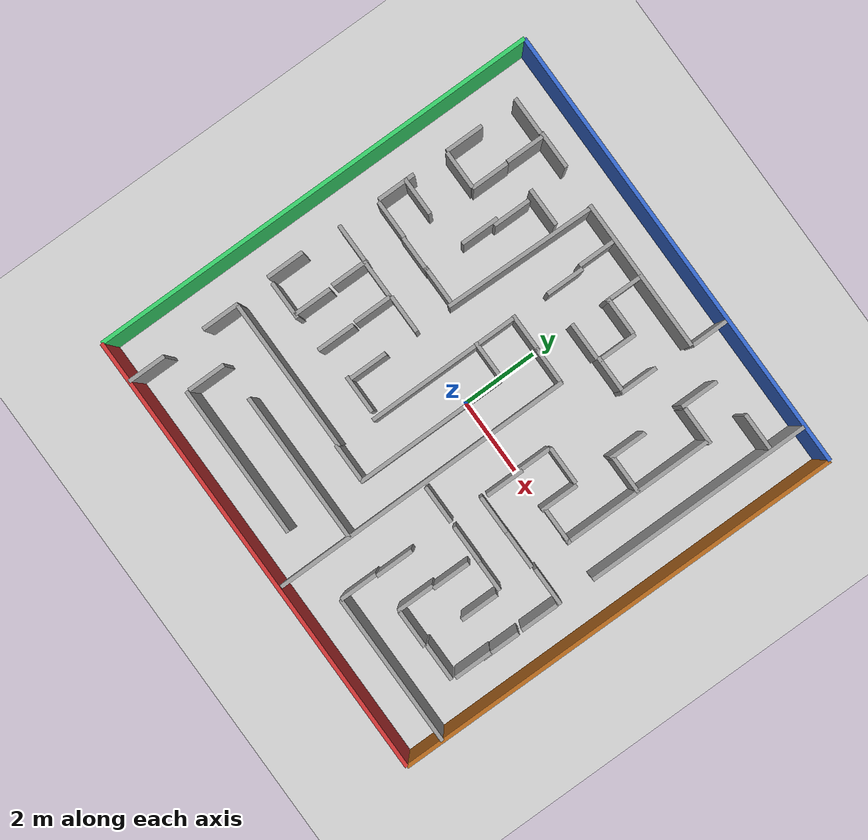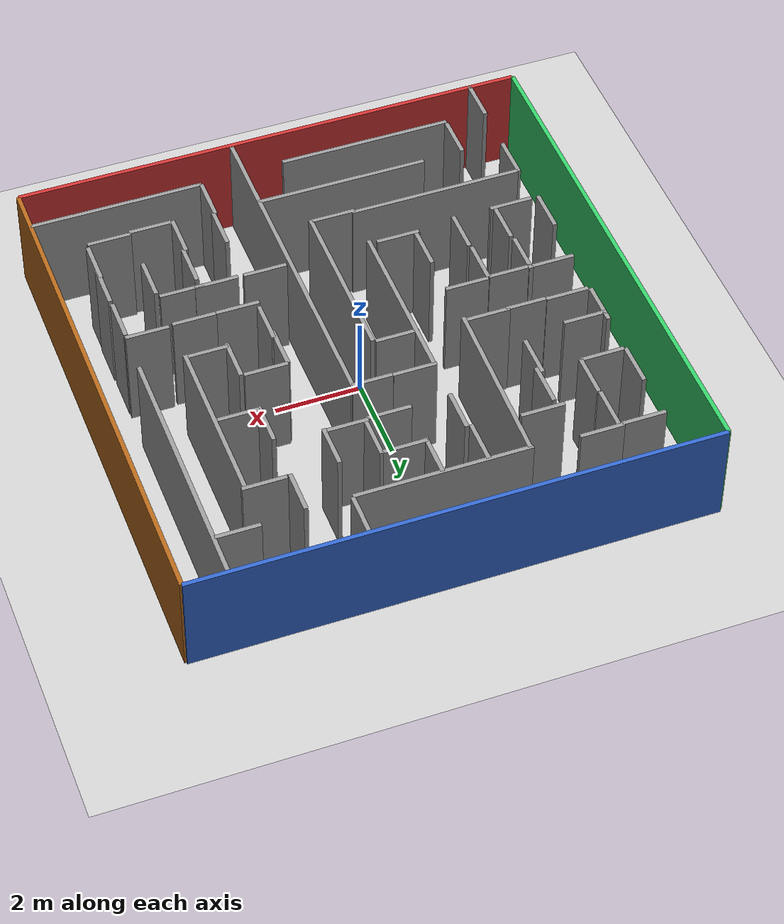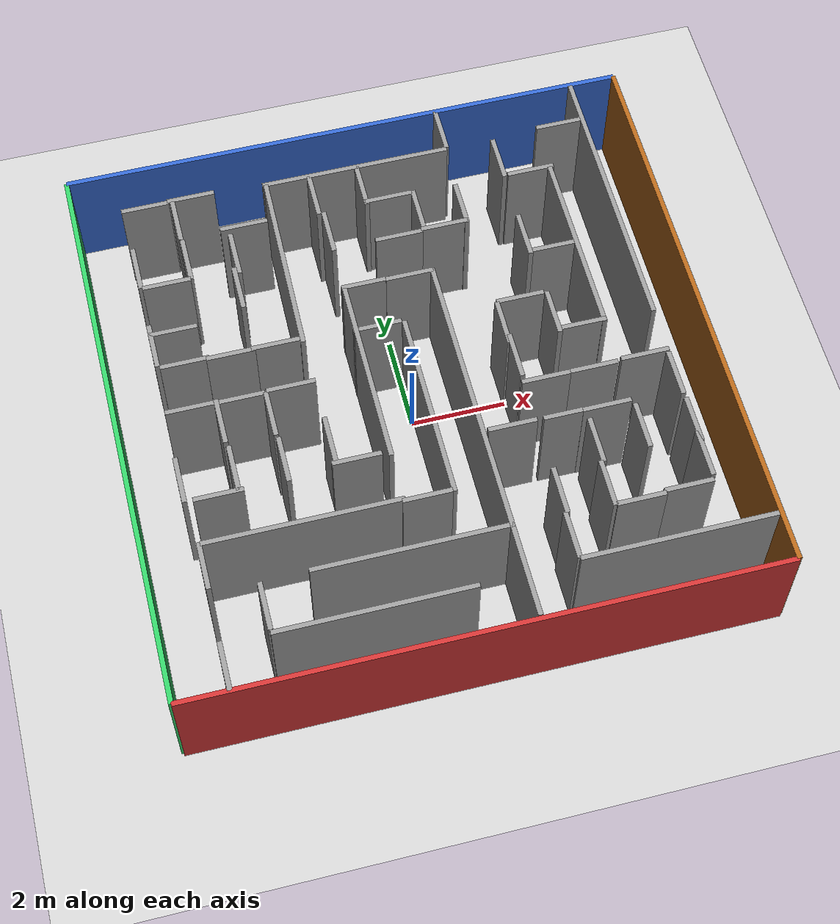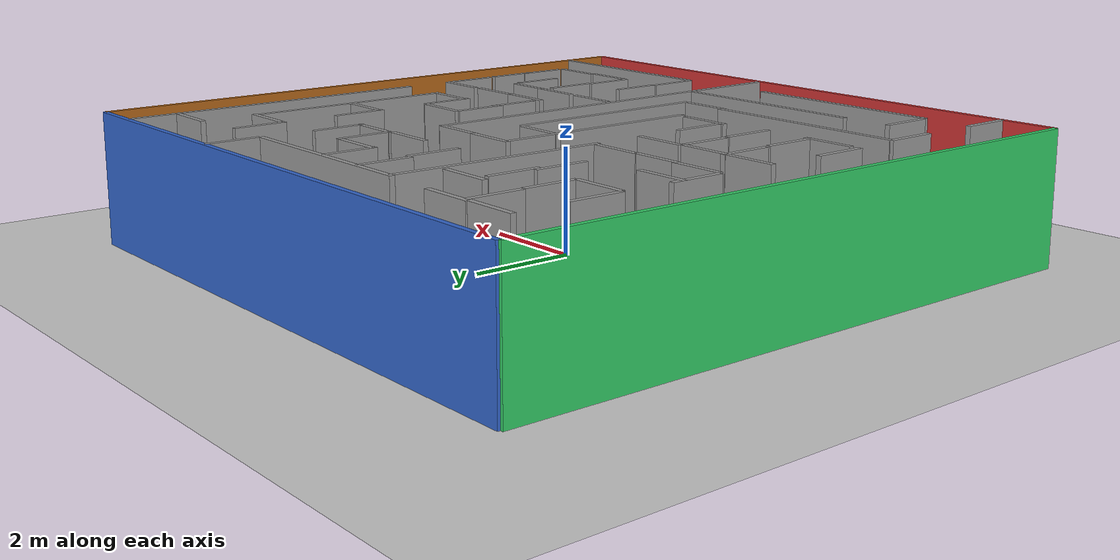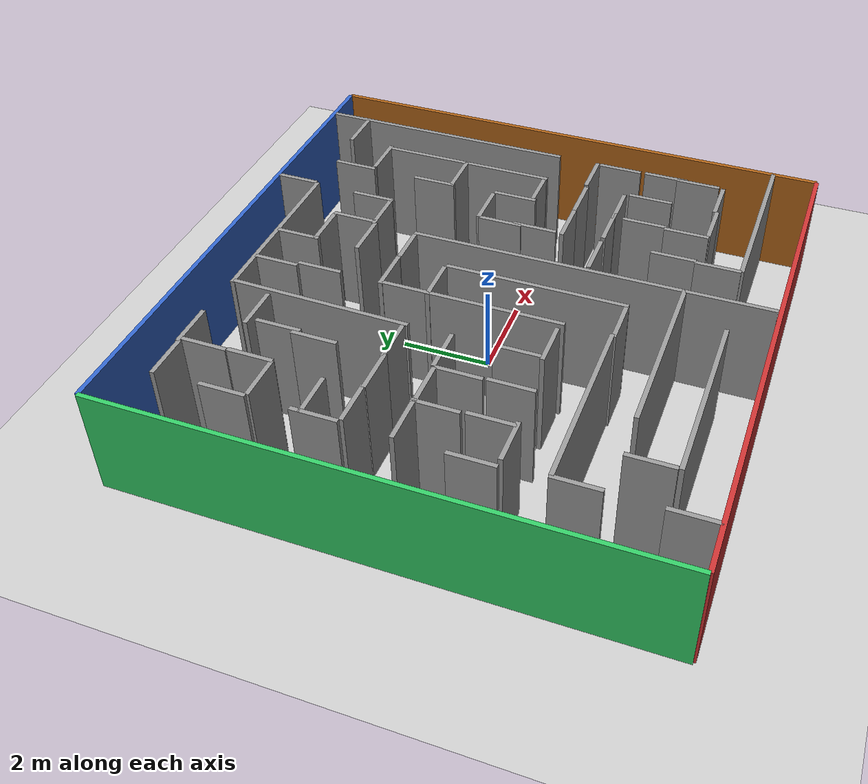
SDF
<sdf version="1.7">
 <world name="expanded_maze_world">
  <light name="sun" type="directional">
   <pose>0 0 10 0 -0 0</pose>
   <diffuse>0.8 0.8 0.8 1</diffuse>
   <specular>0.2 0.2 0.2 1</specular>
   <attenuation>
    <range>1000</range>
    <constant>0.9</constant>
    <linear>0.01</linear>
    <quadratic>0.001</quadratic>
   </attenuation>
   <direction>-0.5 0.1 -0.9</direction>
   <spot><inner_angle>0</inner_angle><outer_angle>0</outer_angle><falloff>0</falloff></spot>
  </light>
  <model name="ground_plane">
   <static>1</static>
   <link name="link">
    <collision name="collision">
     <geometry><plane><normal>0 0 1</normal><size>100 100</size></plane></geometry>
     <surface>
      <contact><collide_bitmask>65535</collide_bitmask></contact>
      <friction><ode><mu>100</mu><mu2>50</mu2></ode></friction>
     </surface>
    </collision>
    <visual name="visual">
     <cast_shadows>0</cast_shadows>
     <geometry><plane><normal>0 0 1</normal><size>100 100</size></plane></geometry>
     <material>
      <script><uri>file://media/materials/scripts/gazebo.material</uri><name>Gazebo/Grey</name></script>
     </material>
    </visual>
   </link>
  </model>
  <model name="ground_plane">
   <static>1</static>
   <link name="link">
    <collision name="collision">
     <geometry><plane><normal>0 0 1</normal><size>100 100</size></plane></geometry>
     <surface>
      <contact><collide_bitmask>65535</collide_bitmask></contact>
      <friction><ode><mu>100</mu><mu2>50</mu2></ode></friction>
     </surface>
    </collision>
    <visual name="visual">
     <cast_shadows>0</cast_shadows>
     <geometry><plane><normal>0 0 1</normal><size>100 100</size></plane></geometry>
     <material>
      <script><uri>file://media/materials/scripts/gazebo.material</uri><name>Gazebo/Grey</name></script>
     </material>
    </visual>
   </link>
  </model>
  <light name="point_light_1" type="point">
   <pose>0 0 10 0 -0 0</pose>
   <diffuse>1 1 1 1</diffuse>
   <specular>0.1 0.1 0.1 1</specular>
   <attenuation>
    <range>20</range>
    <constant>0.5</constant>
    <linear>0.01</linear>
    <quadratic>0.001</quadratic>
   </attenuation>
   <direction>0 0 -1</direction>
   <spot><inner_angle>0</inner_angle><outer_angle>0</outer_angle><falloff>0</falloff></spot>
  </light>
  <model name="back_wall">
   <static>1</static>
   <pose>0 6 0 0 -0 0</pose>
   <link name="link">
    <collision name="collision">
     <geometry><box><size>12 0.1 2.5</size></box></geometry>
     <pose>0 0 1.25 0 -0 0</pose>
    </collision>
    <visual name="visual">
     <geometry><box><size>12 0.1 2.5</size></box></geometry>
     <pose>0 0 1.25 0 -0 0</pose>
     <material><ambient>0.2 0.4 0.8 1</ambient><diffuse>0.2 0.4 0.8 1</diffuse></material>
    </visual>
   </link>
  </model>
  <model name="front_wall">
   <static>1</static>
   <pose>0 -6 0 0 -0 0</pose>
   <link name="link">
    <collision name="collision">
     <geometry><box><size>12 0.1 2.5</size></box></geometry>
     <pose>0 0 1.25 0 -0 0</pose>
    </collision>
    <visual name="visual">
     <geometry><box><size>12 0.1 2.5</size></box></geometry>
     <pose>0 0 1.25 0 -0 0</pose>
     <material><ambient>0.8 0.2 0.2 1</ambient><diffuse>0.8 0.2 0.2 1</diffuse></material>
    </visual>
   </link>
  </model>
  <model name="left_wall">
   <static>1</static>
   <pose>-6 0 0 0 -0 1.5708</pose>
   <link name="link">
    <collision name="collision">
     <geometry><box><size>12 0.1 2.5</size></box></geometry>
     <pose>0 0 1.25 0 -0 0</pose>
    </collision>
    <visual name="visual">
     <geometry><box><size>12 0.1 2.5</size></box></geometry>
     <pose>0 0 1.25 0 -0 0</pose>
     <material><ambient>0.2 0.8 0.4 1</ambient><diffuse>0.2 0.8 0.4 1</diffuse></material>
    </visual>
   </link>
  </model>
  <model name="right_wall">
   <static>1</static>
   <pose>6 0 0 0 -0 1.5708</pose>
   <link name="link">
    <collision name="collision">
     <geometry><box><size>12 0.1 2.5</size></box></geometry>
     <pose>0 0 1.25 0 -0 0</pose>
    </collision>
    <visual name="visual">
     <geometry><box><size>12 0.1 2.5</size></box></geometry>
     <pose>0 0 1.25 0 -0 0</pose>
     <material><ambient>0.7 0.4 0.1 1</ambient><diffuse>0.7 0.4 0.1 1</diffuse></material>
    </visual>
   </link>
  </model>
  <model name="inner_wall_3">
   <static>1</static>
   <pose>5.01855 2.97332 0 0 -0 1.5708</pose>
   <link name="link">
    <collision name="collision">
     <geometry><box><size>6 0.1 2.5</size></box></geometry>
     <pose>0 0 1.25 0 -0 0</pose>
    </collision>
    <visual name="visual">
     <geometry><box><size>6 0.1 2.5</size></box></geometry>
     <pose>0 0 1.25 0 -0 0</pose>
     <material><ambient>0.6 0.6 0.6 1</ambient><diffuse>0.6 0.6 0.6 1</diffuse></material>
    </visual>
   </link>
  </model>
  <model name="small_wall_1">
   <static>1</static>
   <pose>2 -4.48484 0 0 -0 1.5708</pose>
   <link name="link">
    <collision name="collision">
     <geometry><box><size>1 0.1 2.5</size></box></geometry>
     <pose>0 0 1.25 0 -0 0</pose>
    </collision>
    <visual name="visual">
     <geometry><box><size>1 0.1 2.5</size></box></geometry>
     <pose>0 0 1.25 0 -0 0</pose>
     <material><ambient>0.6 0.6 0.6 1</ambient><diffuse>0.6 0.6 0.6 1</diffuse></material>
    </visual>
   </link>
  </model>
  <model name="small_wall_5">
   <static>1</static>
   <pose>-3.50018 0 0 0 -0 0</pose>
   <link name="link">
    <collision name="collision">
     <geometry><box><size>1 0.1 2.5</size></box></geometry>
     <pose>0 0 1.25 0 -0 0</pose>
    </collision>
    <visual name="visual">
     <geometry><box><size>1 0.1 2.5</size></box></geometry>
     <pose>0 0 1.25 0 -0 0</pose>
     <material><ambient>0.6 0.6 0.6 1</ambient><diffuse>0.6 0.6 0.6 1</diffuse></material>
    </visual>
   </link>
  </model>
  <model name="small_wall_3">
   <static>1</static>
   <pose>-4.50887 0.017883 0 0 -0 0</pose>
   <link name="link">
    <collision name="collision">
     <geometry><box><size>1 0.1 2.5</size></box></geometry>
     <pose>0 0 1.25 0 -0 0</pose>
    </collision>
    <visual name="visual">
     <geometry><box><size>1 0.1 2.5</size></box></geometry>
     <pose>0 0 1.25 0 -0 0</pose>
     <material><ambient>0.6 0.6 0.6 1</ambient><diffuse>0.6 0.6 0.6 1</diffuse></material>
    </visual>
   </link>
  </model>
  <model name="small_wall_4">
   <static>1</static>
   <pose>-2.98906 -0.500004 0 0 -0 1.5708</pose>
   <link name="link">
    <collision name="collision">
     <geometry><box><size>1 0.1 2.5</size></box></geometry>
     <pose>0 0 1.25 0 -0 0</pose>
    </collision>
    <visual name="visual">
     <geometry><box><size>1 0.1 2.5</size></box></geometry>
     <pose>0 0 1.25 0 -0 0</pose>
     <material><ambient>0.6 0.6 0.6 1</ambient><diffuse>0.6 0.6 0.6 1</diffuse></material>
    </visual>
   </link>
  </model>
  <model name="small_wall_2">
   <static>1</static>
   <pose>2 5.5 0 0 -0 1.5708</pose>
   <link name="link">
    <collision name="collision">
     <geometry><box><size>1 0.1 2.5</size></box></geometry>
     <pose>0 0 1.25 0 -0 0</pose>
    </collision>
    <visual name="visual">
     <geometry><box><size>1 0.1 2.5</size></box></geometry>
     <pose>0 0 1.25 0 -0 0</pose>
     <material><ambient>0.6 0.6 0.6 1</ambient><diffuse>0.6 0.6 0.6 1</diffuse></material>
    </visual>
   </link>
  </model>
  <model name="inner_wall_5">
   <static>1</static>
   <pose>4 -4.99152 0 0 -0 0</pose>
   <link name="link">
    <collision name="collision">
     <geometry><box><size>4 0.1 2.5</size></box></geometry>
     <pose>0 0 1.25 0 -0 0</pose>
    </collision>
    <visual name="visual">
     <geometry><box><size>4 0.1 2.5</size></box></geometry>
     <pose>0 0 1.25 0 -0 0</pose>
     <material><ambient>0.6 0.6 0.6 1</ambient><diffuse>0.6 0.6 0.6 1</diffuse></material>
    </visual>
   </link>
  </model>
  <gravity>0 0 -9.8</gravity>
  <magnetic_field>6e-06 2.3e-05 -4.2e-05</magnetic_field>
  <atmosphere type="adiabatic"/>
  <physics type="ode">
   <max_step_size>0.001</max_step_size>
   <real_time_factor>1</real_time_factor>
   <real_time_update_rate>1000</real_time_update_rate>
  </physics>
  <scene><ambient>0.4 0.4 0.4 1</ambient><background>0.7 0.7 0.7 1</background><shadows>1</shadows></scene>
  <audio><device>default</device></audio>
  <spherical_coordinates>
   <surface_model>EARTH_WGS84</surface_model>
   <latitude_deg>0</latitude_deg>
   <longitude_deg>0</longitude_deg>
   <elevation>0</elevation>
   <heading_deg>0</heading_deg>
  </spherical_coordinates>
  <model name="inner_wall_1_clone">
   <static>1</static>
   <pose>0.942132 -1.93397 0 0 0 -1.56663</pose>
   <link name="link">
    <collision name="collision">
     <geometry><box><size>6 0.1 2.5</size></box></geometry>
     <pose>0 0 1.25 0 -0 0</pose>
    </collision>
    <visual name="visual">
     <geometry><box><size>8 0.1 2.5</size></box></geometry>
     <pose>0 0 1.25 0 -0 0</pose>
     <material><ambient>0.6 0.6 0.6 1</ambient><diffuse>0.6 0.6 0.6 1</diffuse></material>
    </visual>
   </link>
  </model>
  <model name="inner_wall_5_clone">
   <static>1</static>
   <pose>-0.01019 4.9696 0 0 -0 0</pose>
   <link name="link">
    <collision name="collision">
     <geometry><box><size>4 0.1 2.5</size></box></geometry>
     <pose>0 0 1.25 0 -0 0</pose>
    </collision>
    <visual name="visual">
     <geometry><box><size>4 0.1 2.5</size></box></geometry>
     <pose>0 0 1.25 0 -0 0</pose>
     <material><ambient>0.6 0.6 0.6 1</ambient><diffuse>0.6 0.6 0.6 1</diffuse></material>
    </visual>
   </link>
  </model>
  <model name="inner_wall_5_clone_0">
   <static>1</static>
   <pose>-1.97896 2.96409 0 0 0 -1.58997</pose>
   <link name="link">
    <collision name="collision">
     <geometry><box><size>4 0.1 2.5</size></box></geometry>
     <pose>0 0 1.25 0 -0 0</pose>
    </collision>
    <visual name="visual">
     <geometry><box><size>4 0.1 2.5</size></box></geometry>
     <pose>0 0 1.25 0 -0 0</pose>
     <material><ambient>0.6 0.6 0.6 1</ambient><diffuse>0.6 0.6 0.6 1</diffuse></material>
    </visual>
   </link>
  </model>
  <model name="small_wall_4_clone">
   <static>1</static>
   <pose>-4.95348 1.60124 0 0 -0 1.5708</pose>
   <link name="link">
    <collision name="collision">
     <geometry><box><size>1 0.1 2.5</size></box></geometry>
     <pose>0 0 1.25 0 -0 0</pose>
    </collision>
    <visual name="visual">
     <geometry><box><size>1 0.1 2.5</size></box></geometry>
     <pose>0 0 1.25 0 -0 0</pose>
     <material><ambient>0.6 0.6 0.6 1</ambient><diffuse>0.6 0.6 0.6 1</diffuse></material>
    </visual>
   </link>
  </model>
  <model name="small_wall_3_clone">
   <static>1</static>
   <pose>-2.56284 1.06244 0 0 -0 0</pose>
   <link name="link">
    <collision name="collision">
     <geometry><box><size>1 0.1 2.5</size></box></geometry>
     <pose>0 0 1.25 0 -0 0</pose>
    </collision>
    <visual name="visual">
     <geometry><box><size>1 0.1 2.5</size></box></geometry>
     <pose>0 0 1.25 0 -0 0</pose>
     <material><ambient>0.6 0.6 0.6 1</ambient><diffuse>0.6 0.6 0.6 1</diffuse></material>
    </visual>
   </link>
  </model>
  <model name="small_wall_3_clone_0">
   <static>1</static>
   <pose>-3.48148 1.04617 0 0 -0 0</pose>
   <link name="link">
    <collision name="collision">
     <geometry><box><size>1 0.1 2.5</size></box></geometry>
     <pose>0 0 1.25 0 -0 0</pose>
    </collision>
    <visual name="visual">
     <geometry><box><size>1 0.1 2.5</size></box></geometry>
     <pose>0 0 1.25 0 -0 0</pose>
     <material><ambient>0.6 0.6 0.6 1</ambient><diffuse>0.6 0.6 0.6 1</diffuse></material>
    </visual>
   </link>
  </model>
  <model name="small_wall_3_clone_1">
   <static>1</static>
   <pose>-4.41424 1.06919 0 0 -0 0</pose>
   <link name="link">
    <collision name="collision">
     <geometry><box><size>1 0.1 2.5</size></box></geometry>
     <pose>0 0 1.25 0 -0 0</pose>
    </collision>
    <visual name="visual">
     <geometry><box><size>1 0.1 2.5</size></box></geometry>
     <pose>0 0 1.25 0 -0 0</pose>
     <material><ambient>0.6 0.6 0.6 1</ambient><diffuse>0.6 0.6 0.6 1</diffuse></material>
    </visual>
   </link>
  </model>
  <model name="small_wall_3_clone_2">
   <static>1</static>
   <pose>-2.59397 4.07287 0 0 -0 0</pose>
   <link name="link">
    <collision name="collision">
     <geometry><box><size>1 0.1 2.5</size></box></geometry>
     <pose>0 0 1.25 0 -0 0</pose>
    </collision>
    <visual name="visual">
     <geometry><box><size>1 0.1 2.5</size></box></geometry>
     <pose>0 0 1.25 0 -0 0</pose>
     <material><ambient>0.6 0.6 0.6 1</ambient><diffuse>0.6 0.6 0.6 1</diffuse></material>
    </visual>
   </link>
  </model>
  <model name="small_wall_3_clone_3">
   <static>1</static>
   <pose>-4.49933 1.86883 0 0 -0 0</pose>
   <link name="link">
    <collision name="collision">
     <geometry><box><size>1 0.1 2.5</size></box></geometry>
     <pose>0 0 1.25 0 -0 0</pose>
    </collision>
    <visual name="visual">
     <geometry><box><size>1 0.1 2.5</size></box></geometry>
     <pose>0 0 1.25 0 -0 0</pose>
     <material><ambient>0.6 0.6 0.6 1</ambient><diffuse>0.6 0.6 0.6 1</diffuse></material>
    </visual>
   </link>
  </model>
  <model name="small_wall_4_clone_clone">
   <static>1</static>
   <pose>-2.91754 3.41024 0 0 -0 1.5708</pose>
   <link name="link">
    <collision name="collision">
     <geometry><box><size>1 0.1 2.5</size></box></geometry>
     <pose>0 0 1.25 0 -0 0</pose>
    </collision>
    <visual name="visual">
     <geometry><box><size>1 0.1 2.5</size></box></geometry>
     <pose>0 0 1.25 0 -0 0</pose>
     <material><ambient>0.6 0.6 0.6 1</ambient><diffuse>0.6 0.6 0.6 1</diffuse></material>
    </visual>
   </link>
  </model>
  <model name="small_wall_3_clone_4">
   <static>1</static>
   <pose>1.54156 -1.89147 0 0 -0 0</pose>
   <link name="link">
    <collision name="collision">
     <geometry><box><size>1 0.1 2.5</size></box></geometry>
     <pose>0 0 1.25 0 -0 0</pose>
    </collision>
    <visual name="visual">
     <geometry><box><size>1 0.1 2.5</size></box></geometry>
     <pose>0 0 1.25 0 -0 0</pose>
     <material><ambient>0.6 0.6 0.6 1</ambient><diffuse>0.6 0.6 0.6 1</diffuse></material>
    </visual>
   </link>
  </model>
  <model name="small_wall_3_clone_5">
   <static>1</static>
   <pose>2.66648 -1.89874 0 0 -0 0</pose>
   <link name="link">
    <collision name="collision">
     <geometry><box><size>1 0.1 2.5</size></box></geometry>
     <pose>0 0 1.25 0 -0 0</pose>
    </collision>
    <visual name="visual">
     <geometry><box><size>1 0.1 2.5</size></box></geometry>
     <pose>0 0 1.25 0 -0 0</pose>
     <material><ambient>0.6 0.6 0.6 1</ambient><diffuse>0.6 0.6 0.6 1</diffuse></material>
    </visual>
   </link>
  </model>
  <model name="small_wall_3_clone_6">
   <static>1</static>
   <pose>3.46504 -1.90566 0 0 -0 0</pose>
   <link name="link">
    <collision name="collision">
     <geometry><box><size>1 0.1 2.5</size></box></geometry>
     <pose>0 0 1.25 0 -0 0</pose>
    </collision>
    <visual name="visual">
     <geometry><box><size>1 0.1 2.5</size></box></geometry>
     <pose>0 0 1.25 0 -0 0</pose>
     <material><ambient>0.6 0.6 0.6 1</ambient><diffuse>0.6 0.6 0.6 1</diffuse></material>
    </visual>
   </link>
  </model>
  <model name="small_wall_4_clone_clone_0_clone">
   <static>1</static>
   <pose>3.03848 -2.61564 0 0 -0 1.5708</pose>
   <link name="link">
    <collision name="collision">
     <geometry><box><size>1 0.1 2.5</size></box></geometry>
     <pose>0 0 1.25 0 -0 0</pose>
    </collision>
    <visual name="visual">
     <geometry><box><size>1 0.1 2.5</size></box></geometry>
     <pose>0 0 1.25 0 -0 0</pose>
     <material><ambient>0.6 0.6 0.6 1</ambient><diffuse>0.6 0.6 0.6 1</diffuse></material>
    </visual>
   </link>
  </model>
  <model name="small_wall_4_clone_clone_0_clone_0">
   <static>1</static>
   <pose>2.97809 -3.58071 0 0 -0 1.5708</pose>
   <link name="link">
    <collision name="collision">
     <geometry><box><size>1 0.1 2.5</size></box></geometry>
     <pose>0 0 1.25 0 -0 0</pose>
    </collision>
    <visual name="visual">
     <geometry><box><size>1 0.1 2.5</size></box></geometry>
     <pose>0 0 1.25 0 -0 0</pose>
     <material><ambient>0.6 0.6 0.6 1</ambient><diffuse>0.6 0.6 0.6 1</diffuse></material>
    </visual>
   </link>
  </model>
  <model name="small_wall_3_clone_6_clone">
   <static>1</static>
   <pose>3.50501 -4.05604 0 0 -0 0</pose>
   <link name="link">
    <collision name="collision">
     <geometry><box><size>1 0.1 2.5</size></box></geometry>
     <pose>0 0 1.25 0 -0 0</pose>
    </collision>
    <visual name="visual">
     <geometry><box><size>1 0.1 2.5</size></box></geometry>
     <pose>0 0 1.25 0 -0 0</pose>
     <material><ambient>0.6 0.6 0.6 1</ambient><diffuse>0.6 0.6 0.6 1</diffuse></material>
    </visual>
   </link>
  </model>
  <model name="small_wall_3_clone_6_clone_0">
   <static>1</static>
   <pose>4.47817 -4 0 0 -0 0</pose>
   <link name="link">
    <collision name="collision">
     <geometry><box><size>1 0.1 2.5</size></box></geometry>
     <pose>0 0 1.25 0 -0 0</pose>
    </collision>
    <visual name="visual">
     <geometry><box><size>1 0.1 2.5</size></box></geometry>
     <pose>0 0 1.25 0 -0 0</pose>
     <material><ambient>0.6 0.6 0.6 1</ambient><diffuse>0.6 0.6 0.6 1</diffuse></material>
    </visual>
   </link>
  </model>
  <model name="small_wall_4_clone_clone_0_clone_clone">
   <static>1</static>
   <pose>4.0064 -2.51158 0 0 -0 1.5708</pose>
   <link name="link">
    <collision name="collision">
     <geometry><box><size>1 0.1 2.5</size></box></geometry>
     <pose>0 0 1.25 0 -0 0</pose>
    </collision>
    <visual name="visual">
     <geometry><box><size>1 0.1 2.5</size></box></geometry>
     <pose>0 0 1.25 0 -0 0</pose>
     <material><ambient>0.6 0.6 0.6 1</ambient><diffuse>0.6 0.6 0.6 1</diffuse></material>
    </visual>
   </link>
  </model>
  <model name="small_wall_4_clone_clone_0_clone_clone_clone">
   <static>1</static>
   <pose>4.99601 -3.40378 0 0 -0 1.5708</pose>
   <link name="link">
    <collision name="collision">
     <geometry><box><size>1 0.1 2.5</size></box></geometry>
     <pose>0 0 1.25 0 -0 0</pose>
    </collision>
    <visual name="visual">
     <geometry><box><size>1 0.1 2.5</size></box></geometry>
     <pose>0 0 1.25 0 -0 0</pose>
     <material><ambient>0.6 0.6 0.6 1</ambient><diffuse>0.6 0.6 0.6 1</diffuse></material>
    </visual>
   </link>
  </model>
  <model name="small_wall_4_clone_clone_0_clone_clone_clone_0">
   <static>1</static>
   <pose>5.01762 -2.62789 0 0 -0 1.5708</pose>
   <link name="link">
    <collision name="collision">
     <geometry><box><size>1 0.1 2.5</size></box></geometry>
     <pose>0 0 1.25 0 -0 0</pose>
    </collision>
    <visual name="visual">
     <geometry><box><size>1 0.1 2.5</size></box></geometry>
     <pose>0 0 1.25 0 -0 0</pose>
     <material><ambient>0.6 0.6 0.6 1</ambient><diffuse>0.6 0.6 0.6 1</diffuse></material>
    </visual>
   </link>
  </model>
  <model name="small_wall_4_clone_clone_0_clone_clone_clone_1">
   <static>1</static>
   <pose>5.00425 -1.52973 0 0 -0 1.5708</pose>
   <link name="link">
    <collision name="collision">
     <geometry><box><size>1 0.1 2.5</size></box></geometry>
     <pose>0 0 1.25 0 -0 0</pose>
    </collision>
    <visual name="visual">
     <geometry><box><size>1 0.1 2.5</size></box></geometry>
     <pose>0 0 1.25 0 -0 0</pose>
     <material><ambient>0.6 0.6 0.6 1</ambient><diffuse>0.6 0.6 0.6 1</diffuse></material>
    </visual>
   </link>
  </model>
  <model name="small_wall_3_clone_6_clone_1">
   <static>1</static>
   <pose>4.54254 -0.957363 0 0 -0 0</pose>
   <link name="link">
    <collision name="collision">
     <geometry><box><size>1 0.1 2.5</size></box></geometry>
     <pose>0 0 1.25 0 -0 0</pose>
    </collision>
    <visual name="visual">
     <geometry><box><size>1 0.1 2.5</size></box></geometry>
     <pose>0 0 1.25 0 -0 0</pose>
     <material><ambient>0.6 0.6 0.6 1</ambient><diffuse>0.6 0.6 0.6 1</diffuse></material>
    </visual>
   </link>
  </model>
  <model name="small_wall_3_clone_6_clone_2">
   <static>1</static>
   <pose>3.46823 -0.994603 0 0 -0 0</pose>
   <link name="link">
    <collision name="collision">
     <geometry><box><size>1 0.1 2.5</size></box></geometry>
     <pose>0 0 1.25 0 -0 0</pose>
    </collision>
    <visual name="visual">
     <geometry><box><size>1 0.1 2.5</size></box></geometry>
     <pose>0 0 1.25 0 -0 0</pose>
     <material><ambient>0.6 0.6 0.6 1</ambient><diffuse>0.6 0.6 0.6 1</diffuse></material>
    </visual>
   </link>
  </model>
  <model name="small_wall_3_clone_6_clone_3">
   <static>1</static>
   <pose>2.47607 -1 0 0 -0 0</pose>
   <link name="link">
    <collision name="collision">
     <geometry><box><size>1 0.1 2.5</size></box></geometry>
     <pose>0 0 1.25 0 -0 0</pose>
    </collision>
    <visual name="visual">
     <geometry><box><size>1 0.1 2.5</size></box></geometry>
     <pose>0 0 1.25 0 -0 0</pose>
     <material><ambient>0.6 0.6 0.6 1</ambient><diffuse>0.6 0.6 0.6 1</diffuse></material>
    </visual>
   </link>
  </model>
  <model name="small_wall_4_clone_clone_0_clone_clone_clone_1_clone">
   <static>1</static>
   <pose>2.03325 -0.363202 0 0 -0 1.5708</pose>
   <link name="link">
    <collision name="collision">
     <geometry><box><size>1 0.1 2.5</size></box></geometry>
     <pose>0 0 1.25 0 -0 0</pose>
    </collision>
    <visual name="visual">
     <geometry><box><size>1 0.1 2.5</size></box></geometry>
     <pose>0 0 1.25 0 -0 0</pose>
     <material><ambient>0.6 0.6 0.6 1</ambient><diffuse>0.6 0.6 0.6 1</diffuse></material>
    </visual>
   </link>
  </model>
  <model name="small_wall_4_clone_clone_0_clone_clone_clone_1_clone_0">
   <static>1</static>
   <pose>1.9948 0.441125 0 0 -0 1.5708</pose>
   <link name="link">
    <collision name="collision">
     <geometry><box><size>1 0.1 2.5</size></box></geometry>
     <pose>0 0 1.25 0 -0 0</pose>
    </collision>
    <visual name="visual">
     <geometry><box><size>1 0.1 2.5</size></box></geometry>
     <pose>0 0 1.25 0 -0 0</pose>
     <material><ambient>0.6 0.6 0.6 1</ambient><diffuse>0.6 0.6 0.6 1</diffuse></material>
    </visual>
   </link>
  </model>
  <model name="small_wall_3_clone_6_clone_3_clone">
   <static>1</static>
   <pose>2.49055 0.95757 0 0 -0 0</pose>
   <link name="link">
    <collision name="collision">
     <geometry><box><size>1 0.1 2.5</size></box></geometry>
     <pose>0 0 1.25 0 -0 0</pose>
    </collision>
    <visual name="visual">
     <geometry><box><size>1 0.1 2.5</size></box></geometry>
     <pose>0 0 1.25 0 -0 0</pose>
     <material><ambient>0.6 0.6 0.6 1</ambient><diffuse>0.6 0.6 0.6 1</diffuse></material>
    </visual>
   </link>
  </model>
  <model name="small_wall_4_clone_clone_0_clone_clone_clone_1_clone_1">
   <static>1</static>
   <pose>3.04702 0.449523 0 0 -0 1.5708</pose>
   <link name="link">
    <collision name="collision">
     <geometry><box><size>1 0.1 2.5</size></box></geometry>
     <pose>0 0 1.25 0 -0 0</pose>
    </collision>
    <visual name="visual">
     <geometry><box><size>1 0.1 2.5</size></box></geometry>
     <pose>0 0 1.25 0 -0 0</pose>
     <material><ambient>0.6 0.6 0.6 1</ambient><diffuse>0.6 0.6 0.6 1</diffuse></material>
    </visual>
   </link>
  </model>
  <model name="small_wall_3_clone_6_clone_2_clone">
   <static>1</static>
   <pose>3.54022 0.036936 0 0 -0 0</pose>
   <link name="link">
    <collision name="collision">
     <geometry><box><size>1 0.1 2.5</size></box></geometry>
     <pose>0 0 1.25 0 -0 0</pose>
    </collision>
    <visual name="visual">
     <geometry><box><size>1 0.1 2.5</size></box></geometry>
     <pose>0 0 1.25 0 -0 0</pose>
     <material><ambient>0.6 0.6 0.6 1</ambient><diffuse>0.6 0.6 0.6 1</diffuse></material>
    </visual>
   </link>
  </model>
  <model name="inner_wall_5_clone_0_clone">
   <static>1</static>
   <pose>3.98763 1.97381 0 0 0 -1.56906</pose>
   <link name="link">
    <collision name="collision">
     <geometry><box><size>4 0.1 2.5</size></box></geometry>
     <pose>0 0 1.25 0 -0 0</pose>
    </collision>
    <visual name="visual">
     <geometry><box><size>4 0.1 2.5</size></box></geometry>
     <pose>0 0 1.25 0 -0 0</pose>
     <material><ambient>0.6 0.6 0.6 1</ambient><diffuse>0.6 0.6 0.6 1</diffuse></material>
    </visual>
   </link>
  </model>
  <model name="small_wall_3_clone_2_clone">
   <static>1</static>
   <pose>3.56918 4 0 0 -0 0</pose>
   <link name="link">
    <collision name="collision">
     <geometry><box><size>1 0.1 2.5</size></box></geometry>
     <pose>0 0 1.25 0 -0 0</pose>
    </collision>
    <visual name="visual">
     <geometry><box><size>1 0.1 2.5</size></box></geometry>
     <pose>0 0 1.25 0 -0 0</pose>
     <material><ambient>0.6 0.6 0.6 1</ambient><diffuse>0.6 0.6 0.6 1</diffuse></material>
    </visual>
   </link>
  </model>
  <model name="small_wall_4_clone_clone_clone">
   <static>1</static>
   <pose>3.00012 4.45909 0 0 -0 1.5708</pose>
   <link name="link">
    <collision name="collision">
     <geometry><box><size>1 0.1 2.5</size></box></geometry>
     <pose>0 0 1.25 0 -0 0</pose>
    </collision>
    <visual name="visual">
     <geometry><box><size>1 0.1 2.5</size></box></geometry>
     <pose>0 0 1.25 0 -0 0</pose>
     <material><ambient>0.6 0.6 0.6 1</ambient><diffuse>0.6 0.6 0.6 1</diffuse></material>
    </visual>
   </link>
  </model>
  <model name="small_wall_3_clone_2_clone_0">
   <static>1</static>
   <pose>3.501 2.00333 0 0 -0 0</pose>
   <link name="link">
    <collision name="collision">
     <geometry><box><size>1 0.1 2.5</size></box></geometry>
     <pose>0 0 1.25 0 -0 0</pose>
    </collision>
    <visual name="visual">
     <geometry><box><size>1 0.1 2.5</size></box></geometry>
     <pose>0 0 1.25 0 -0 0</pose>
     <material><ambient>0.6 0.6 0.6 1</ambient><diffuse>0.6 0.6 0.6 1</diffuse></material>
    </visual>
   </link>
  </model>
  <model name="small_wall_3_clone_2_clone_1">
   <static>1</static>
   <pose>4.49432 5.04433 0 0 -0 0</pose>
   <link name="link">
    <collision name="collision">
     <geometry><box><size>1 0.1 2.5</size></box></geometry>
     <pose>0 0 1.25 0 -0 0</pose>
    </collision>
    <visual name="visual">
     <geometry><box><size>1 0.1 2.5</size></box></geometry>
     <pose>0 0 1.25 0 -0 0</pose>
     <material><ambient>0.6 0.6 0.6 1</ambient><diffuse>0.6 0.6 0.6 1</diffuse></material>
    </visual>
   </link>
  </model>
  <model name="small_wall_4_clone_clone_clone_0">
   <static>1</static>
   <pose>0.014094 4.46666 0 0 -0 1.5708</pose>
   <link name="link">
    <collision name="collision">
     <geometry><box><size>1 0.1 2.5</size></box></geometry>
     <pose>0 0 1.25 0 -0 0</pose>
    </collision>
    <visual name="visual">
     <geometry><box><size>1 0.1 2.5</size></box></geometry>
     <pose>0 0 1.25 0 -0 0</pose>
     <material><ambient>0.6 0.6 0.6 1</ambient><diffuse>0.6 0.6 0.6 1</diffuse></material>
    </visual>
   </link>
  </model>
  <model name="small_wall_3_clone_2_clone_2">
   <static>1</static>
   <pose>0.488348 4.04121 0 0 -0 0</pose>
   <link name="link">
    <collision name="collision">
     <geometry><box><size>1 0.1 2.5</size></box></geometry>
     <pose>0 0 1.25 0 -0 0</pose>
    </collision>
    <visual name="visual">
     <geometry><box><size>1 0.1 2.5</size></box></geometry>
     <pose>0 0 1.25 0 -0 0</pose>
     <material><ambient>0.6 0.6 0.6 1</ambient><diffuse>0.6 0.6 0.6 1</diffuse></material>
    </visual>
   </link>
  </model>
  <model name="small_wall_3_clone_2_clone_3">
   <static>1</static>
   <pose>0.470058 3.03229 0 0 -0 0</pose>
   <link name="link">
    <collision name="collision">
     <geometry><box><size>1 0.1 2.5</size></box></geometry>
     <pose>0 0 1.25 0 -0 0</pose>
    </collision>
    <visual name="visual">
     <geometry><box><size>1 0.1 2.5</size></box></geometry>
     <pose>0 0 1.25 0 -0 0</pose>
     <material><ambient>0.6 0.6 0.6 1</ambient><diffuse>0.6 0.6 0.6 1</diffuse></material>
    </visual>
   </link>
  </model>
  <model name="small_wall_4_clone_clone_clone_1">
   <static>1</static>
   <pose>1.01951 3.57135 0 0 -0 1.5708</pose>
   <link name="link">
    <collision name="collision">
     <geometry><box><size>1 0.1 2.5</size></box></geometry>
     <pose>0 0 1.25 0 -0 0</pose>
    </collision>
    <visual name="visual">
     <geometry><box><size>1 0.1 2.5</size></box></geometry>
     <pose>0 0 1.25 0 -0 0</pose>
     <material><ambient>0.6 0.6 0.6 1</ambient><diffuse>0.6 0.6 0.6 1</diffuse></material>
    </visual>
   </link>
  </model>
  <model name="small_wall_3_clone_2_clone_4">
   <static>1</static>
   <pose>1.44641 3.07224 0 0 -0 0</pose>
   <link name="link">
    <collision name="collision">
     <geometry><box><size>1 0.1 2.5</size></box></geometry>
     <pose>0 0 1.25 0 -0 0</pose>
    </collision>
    <visual name="visual">
     <geometry><box><size>1 0.1 2.5</size></box></geometry>
     <pose>0 0 1.25 0 -0 0</pose>
     <material><ambient>0.6 0.6 0.6 1</ambient><diffuse>0.6 0.6 0.6 1</diffuse></material>
    </visual>
   </link>
  </model>
  <model name="small_wall_4_clone_clone_clone_2">
   <static>1</static>
   <pose>1.92642 3.50879 0 0 -0 1.5708</pose>
   <link name="link">
    <collision name="collision">
     <geometry><box><size>1 0.1 2.5</size></box></geometry>
     <pose>0 0 1.25 0 -0 0</pose>
    </collision>
    <visual name="visual">
     <geometry><box><size>1 0.1 2.5</size></box></geometry>
     <pose>0 0 1.25 0 -0 0</pose>
     <material><ambient>0.6 0.6 0.6 1</ambient><diffuse>0.6 0.6 0.6 1</diffuse></material>
    </visual>
   </link>
  </model>
  <model name="small_wall_4_clone_clone_clone_3">
   <static>1</static>
   <pose>2.99514 2.43501 0 0 -0 1.5708</pose>
   <link name="link">
    <collision name="collision">
     <geometry><box><size>1 0.1 2.5</size></box></geometry>
     <pose>0 0 1.25 0 -0 0</pose>
    </collision>
    <visual name="visual">
     <geometry><box><size>1 0.1 2.5</size></box></geometry>
     <pose>0 0 1.25 0 -0 0</pose>
     <material><ambient>0.6 0.6 0.6 1</ambient><diffuse>0.6 0.6 0.6 1</diffuse></material>
    </visual>
   </link>
  </model>
  <model name="small_wall_3_clone_0_clone">
   <static>1</static>
   <pose>0.441346 2.03485 0 0 -0 0</pose>
   <link name="link">
    <collision name="collision">
     <geometry><box><size>1 0.1 2.5</size></box></geometry>
     <pose>0 0 1.25 0 -0 0</pose>
    </collision>
    <visual name="visual">
     <geometry><box><size>1 0.1 2.5</size></box></geometry>
     <pose>0 0 1.25 0 -0 0</pose>
     <material><ambient>0.6 0.6 0.6 1</ambient><diffuse>0.6 0.6 0.6 1</diffuse></material>
    </visual>
   </link>
  </model>
  <model name="small_wall_3_clone_0_clone_0">
   <static>1</static>
   <pose>-0.483011 2.04757 0 0 -0 0</pose>
   <link name="link">
    <collision name="collision">
     <geometry><box><size>1 0.1 2.5</size></box></geometry>
     <pose>0 0 1.25 0 -0 0</pose>
    </collision>
    <visual name="visual">
     <geometry><box><size>1 0.1 2.5</size></box></geometry>
     <pose>0 0 1.25 0 -0 0</pose>
     <material><ambient>0.6 0.6 0.6 1</ambient><diffuse>0.6 0.6 0.6 1</diffuse></material>
    </visual>
   </link>
  </model>
  <model name="inner_wall_5_clone_0_clone_0">
   <static>1</static>
   <pose>-0.921494 0.018485 0 0 0 -1.56906</pose>
   <link name="link">
    <collision name="collision">
     <geometry><box><size>4 0.1 2.5</size></box></geometry>
     <pose>0 0 1.25 0 -0 0</pose>
    </collision>
    <visual name="visual">
     <geometry><box><size>4 0.1 2.5</size></box></geometry>
     <pose>0 0 1.25 0 -0 0</pose>
     <material><ambient>0.6 0.6 0.6 1</ambient><diffuse>0.6 0.6 0.6 1</diffuse></material>
    </visual>
   </link>
  </model>
  <model name="small_wall_3_clone_clone">
   <static>1</static>
   <pose>-0.481384 0.986952 0 0 -0 0</pose>
   <link name="link">
    <collision name="collision">
     <geometry><box><size>1 0.1 2.5</size></box></geometry>
     <pose>0 0 1.25 0 -0 0</pose>
    </collision>
    <visual name="visual">
     <geometry><box><size>1 0.1 2.5</size></box></geometry>
     <pose>0 0 1.25 0 -0 0</pose>
     <material><ambient>0.6 0.6 0.6 1</ambient><diffuse>0.6 0.6 0.6 1</diffuse></material>
    </visual>
   </link>
  </model>
  <model name="inner_wall_5_clone_0_clone_1">
   <static>1</static>
   <pose>0.069805 -1.03995 0 0 0 -1.56906</pose>
   <link name="link">
    <collision name="collision">
     <geometry><box><size>4 0.1 2.5</size></box></geometry>
     <pose>0 0 1.25 0 -0 0</pose>
    </collision>
    <visual name="visual">
     <geometry><box><size>4 0.1 2.5</size></box></geometry>
     <pose>0 0 1.25 0 -0 0</pose>
     <material><ambient>0.6 0.6 0.6 1</ambient><diffuse>0.6 0.6 0.6 1</diffuse></material>
    </visual>
   </link>
  </model>
  <model name="small_wall_3_clone_2_clone_5">
   <static>1</static>
   <pose>-0.456515 -2.99937 0 0 -0 0</pose>
   <link name="link">
    <collision name="collision">
     <geometry><box><size>1 0.1 2.5</size></box></geometry>
     <pose>0 0 1.25 0 -0 0</pose>
    </collision>
    <visual name="visual">
     <geometry><box><size>1 0.1 2.5</size></box></geometry>
     <pose>0 0 1.25 0 -0 0</pose>
     <material><ambient>0.6 0.6 0.6 1</ambient><diffuse>0.6 0.6 0.6 1</diffuse></material>
    </visual>
   </link>
  </model>
  <model name="inner_wall_5_clone_1">
   <static>1</static>
   <pose>-2.88283 -2.95759 0 0 -0 0</pose>
   <link name="link">
    <collision name="collision">
     <geometry><box><size>4 0.1 2.5</size></box></geometry>
     <pose>0 0 1.25 0 -0 0</pose>
    </collision>
    <visual name="visual">
     <geometry><box><size>4 0.1 2.5</size></box></geometry>
     <pose>0 0 1.25 0 -0 0</pose>
     <material><ambient>0.6 0.6 0.6 1</ambient><diffuse>0.6 0.6 0.6 1</diffuse></material>
    </visual>
   </link>
  </model>
  <model name="small_wall_4_clone_clone_clone_4">
   <static>1</static>
   <pose>-3.90653 3.5009 0 0 -0 1.5708</pose>
   <link name="link">
    <collision name="collision">
     <geometry><box><size>1 0.1 2.5</size></box></geometry>
     <pose>0 0 1.25 0 -0 0</pose>
    </collision>
    <visual name="visual">
     <geometry><box><size>1 0.1 2.5</size></box></geometry>
     <pose>0 0 1.25 0 -0 0</pose>
     <material><ambient>0.6 0.6 0.6 1</ambient><diffuse>0.6 0.6 0.6 1</diffuse></material>
    </visual>
   </link>
  </model>
  <model name="small_wall_4_clone_clone_clone_5">
   <static>1</static>
   <pose>-3.92801 4.5143 0 0 -0 1.5708</pose>
   <link name="link">
    <collision name="collision">
     <geometry><box><size>1 0.1 2.5</size></box></geometry>
     <pose>0 0 1.25 0 -0 0</pose>
    </collision>
    <visual name="visual">
     <geometry><box><size>1 0.1 2.5</size></box></geometry>
     <pose>0 0 1.25 0 -0 0</pose>
     <material><ambient>0.6 0.6 0.6 1</ambient><diffuse>0.6 0.6 0.6 1</diffuse></material>
    </visual>
   </link>
  </model>
  <model name="small_wall_3_clone_2_clone_6">
   <static>1</static>
   <pose>-4.50501 5.01635 0 0 -0 0</pose>
   <link name="link">
    <collision name="collision">
     <geometry><box><size>1 0.1 2.5</size></box></geometry>
     <pose>0 0 1.25 0 -0 0</pose>
    </collision>
    <visual name="visual">
     <geometry><box><size>1 0.1 2.5</size></box></geometry>
     <pose>0 0 1.25 0 -0 0</pose>
     <material><ambient>0.6 0.6 0.6 1</ambient><diffuse>0.6 0.6 0.6 1</diffuse></material>
    </visual>
   </link>
  </model>
  <model name="small_wall_3_clone_2_clone_7">
   <static>1</static>
   <pose>-4.41732 3.01695 0 0 -0 0</pose>
   <link name="link">
    <collision name="collision">
     <geometry><box><size>1 0.1 2.5</size></box></geometry>
     <pose>0 0 1.25 0 -0 0</pose>
    </collision>
    <visual name="visual">
     <geometry><box><size>1 0.1 2.5</size></box></geometry>
     <pose>0 0 1.25 0 -0 0</pose>
     <material><ambient>0.6 0.6 0.6 1</ambient><diffuse>0.6 0.6 0.6 1</diffuse></material>
    </visual>
   </link>
  </model>
  <model name="small_wall_4_clone_0">
   <static>1</static>
   <pose>-2.96095 -1.55488 0 0 -0 1.5708</pose>
   <link name="link">
    <collision name="collision">
     <geometry><box><size>1 0.1 2.5</size></box></geometry>
     <pose>0 0 1.25 0 -0 0</pose>
    </collision>
    <visual name="visual">
     <geometry><box><size>1 0.1 2.5</size></box></geometry>
     <pose>0 0 1.25 0 -0 0</pose>
     <material><ambient>0.6 0.6 0.6 1</ambient><diffuse>0.6 0.6 0.6 1</diffuse></material>
    </visual>
   </link>
  </model>
  <model name="small_wall_4_clone_1">
   <static>1</static>
   <pose>-3.97779 -0.424487 0 0 -0 1.5708</pose>
   <link name="link">
    <collision name="collision">
     <geometry><box><size>1 0.1 2.5</size></box></geometry>
     <pose>0 0 1.25 0 -0 0</pose>
    </collision>
    <visual name="visual">
     <geometry><box><size>1 0.1 2.5</size></box></geometry>
     <pose>0 0 1.25 0 -0 0</pose>
     <material><ambient>0.6 0.6 0.6 1</ambient><diffuse>0.6 0.6 0.6 1</diffuse></material>
    </visual>
   </link>
  </model>
  <model name="small_wall_4_clone_2">
   <static>1</static>
   <pose>-3.94089 -1.50772 0 0 -0 1.5708</pose>
   <link name="link">
    <collision name="collision">
     <geometry><box><size>1 0.1 2.5</size></box></geometry>
     <pose>0 0 1.25 0 -0 0</pose>
    </collision>
    <visual name="visual">
     <geometry><box><size>1 0.1 2.5</size></box></geometry>
     <pose>0 0 1.25 0 -0 0</pose>
     <material><ambient>0.6 0.6 0.6 1</ambient><diffuse>0.6 0.6 0.6 1</diffuse></material>
    </visual>
   </link>
  </model>
  <model name="small_wall_4_clone_3">
   <static>1</static>
   <pose>-5 -1.51963 0 0 -0 1.5708</pose>
   <link name="link">
    <collision name="collision">
     <geometry><box><size>1 0.1 2.5</size></box></geometry>
     <pose>0 0 1.25 0 -0 0</pose>
    </collision>
    <visual name="visual">
     <geometry><box><size>1 0.1 2.5</size></box></geometry>
     <pose>0 0 1.25 0 -0 0</pose>
     <material><ambient>0.6 0.6 0.6 1</ambient><diffuse>0.6 0.6 0.6 1</diffuse></material>
    </visual>
   </link>
  </model>
  <model name="small_wall_3_clone_7">
   <static>1</static>
   <pose>-4.33776 -2.00717 0 0 -0 0</pose>
   <link name="link">
    <collision name="collision">
     <geometry><box><size>1 0.1 2.5</size></box></geometry>
     <pose>0 0 1.25 0 -0 0</pose>
    </collision>
    <visual name="visual">
     <geometry><box><size>1 0.1 2.5</size></box></geometry>
     <pose>0 0 1.25 0 -0 0</pose>
     <material><ambient>0.6 0.6 0.6 1</ambient><diffuse>0.6 0.6 0.6 1</diffuse></material>
    </visual>
   </link>
  </model>
  <model name="small_wall_3_clone_8">
   <static>1</static>
   <pose>-1.58151 -1.87997 0 0 -0 0</pose>
   <link name="link">
    <collision name="collision">
     <geometry><box><size>1 0.1 2.5</size></box></geometry>
     <pose>0 0 1.25 0 -0 0</pose>
    </collision>
    <visual name="visual">
     <geometry><box><size>1 0.1 2.5</size></box></geometry>
     <pose>0 0 1.25 0 -0 0</pose>
     <material><ambient>0.6 0.6 0.6 1</ambient><diffuse>0.6 0.6 0.6 1</diffuse></material>
    </visual>
   </link>
  </model>
  <model name="small_wall_4_clone_2_clone">
   <static>1</static>
   <pose>-1.99299 -1.3352 0 0 -0 1.5708</pose>
   <link name="link">
    <collision name="collision">
     <geometry><box><size>1 0.1 2.5</size></box></geometry>
     <pose>0 0 1.25 0 -0 0</pose>
    </collision>
    <visual name="visual">
     <geometry><box><size>1 0.1 2.5</size></box></geometry>
     <pose>0 0 1.25 0 -0 0</pose>
     <material><ambient>0.6 0.6 0.6 1</ambient><diffuse>0.6 0.6 0.6 1</diffuse></material>
    </visual>
   </link>
  </model>
  <model name="small_wall_5_clone">
   <static>1</static>
   <pose>-2.47369 0.033261 0 0 -0 0</pose>
   <link name="link">
    <collision name="collision">
     <geometry><box><size>1 0.1 2.5</size></box></geometry>
     <pose>0 0 1.25 0 -0 0</pose>
    </collision>
    <visual name="visual">
     <geometry><box><size>1 0.1 2.5</size></box></geometry>
     <pose>0 0 1.25 0 -0 0</pose>
     <material><ambient>0.6 0.6 0.6 1</ambient><diffuse>0.6 0.6 0.6 1</diffuse></material>
    </visual>
   </link>
  </model>
  <model name="small_wall_3_clone_2_clone_8">
   <static>1</static>
   <pose>-3.5314 5.04629 0 0 -0 0</pose>
   <link name="link">
    <collision name="collision">
     <geometry><box><size>1 0.1 2.5</size></box></geometry>
     <pose>0 0 1.25 0 -0 0</pose>
    </collision>
    <visual name="visual">
     <geometry><box><size>1 0.1 2.5</size></box></geometry>
     <pose>0 0 1.25 0 -0 0</pose>
     <material><ambient>0.6 0.6 0.6 1</ambient><diffuse>0.6 0.6 0.6 1</diffuse></material>
    </visual>
   </link>
  </model>
  <model name="small_wall_4_clone_clone_clone_6">
   <static>1</static>
   <pose>-3.00818 2.5672 0 0 -0 1.5708</pose>
   <link name="link">
    <collision name="collision">
     <geometry><box><size>1 0.1 2.5</size></box></geometry>
     <pose>0 0 1.25 0 -0 0</pose>
    </collision>
    <visual name="visual">
     <geometry><box><size>1 0.1 2.5</size></box></geometry>
     <pose>0 0 1.25 0 -0 0</pose>
     <material><ambient>0.6 0.6 0.6 1</ambient><diffuse>0.6 0.6 0.6 1</diffuse></material>
    </visual>
   </link>
  </model>
  <model name="inner_wall_5_clone_1_clone">
   <static>1</static>
   <pose>-1.00415 -3.9972 0 0 -0 0</pose>
   <link name="link">
    <collision name="collision">
     <geometry><box><size>4 0.1 2.5</size></box></geometry>
     <pose>0 0 1.25 0 -0 0</pose>
    </collision>
    <visual name="visual">
     <geometry><box><size>4 0.1 2.5</size></box></geometry>
     <pose>0 0 1.25 0 -0 0</pose>
     <material><ambient>0.6 0.6 0.6 1</ambient><diffuse>0.6 0.6 0.6 1</diffuse></material>
    </visual>
   </link>
  </model>
  <model name="inner_wall_5_clone_1_clone_clone">
   <static>1</static>
   <pose>-1.96924 -5.06492 0 0 -0 0</pose>
   <link name="link">
    <collision name="collision">
     <geometry><box><size>4 0.1 2.5</size></box></geometry>
     <pose>0 0 1.25 0 -0 0</pose>
    </collision>
    <visual name="visual">
     <geometry><box><size>4 0.1 2.5</size></box></geometry>
     <pose>0 0 1.25 0 -0 0</pose>
     <material><ambient>0.6 0.6 0.6 1</ambient><diffuse>0.6 0.6 0.6 1</diffuse></material>
    </visual>
   </link>
  </model>
  <model name="small_wall_4_clone_3_clone">
   <static>1</static>
   <pose>-3.95284 -4.50757 0 0 -0 1.5708</pose>
   <link name="link">
    <collision name="collision">
     <geometry><box><size>1 0.1 2.5</size></box></geometry>
     <pose>0 0 1.25 0 -0 0</pose>
    </collision>
    <visual name="visual">
     <geometry><box><size>1 0.1 2.5</size></box></geometry>
     <pose>0 0 1.25 0 -0 0</pose>
     <material><ambient>0.6 0.6 0.6 1</ambient><diffuse>0.6 0.6 0.6 1</diffuse></material>
    </visual>
   </link>
  </model>
  <model name="small_wall_4_clone_3_clone_0">
   <static>1</static>
   <pose>-4.90309 -3.42349 0 0 -0 1.5708</pose>
   <link name="link">
    <collision name="collision">
     <geometry><box><size>1 0.1 2.5</size></box></geometry>
     <pose>0 0 1.25 0 -0 0</pose>
    </collision>
    <visual name="visual">
     <geometry><box><size>1 0.1 2.5</size></box></geometry>
     <pose>0 0 1.25 0 -0 0</pose>
     <material><ambient>0.6 0.6 0.6 1</ambient><diffuse>0.6 0.6 0.6 1</diffuse></material>
    </visual>
   </link>
  </model>
  <model name="small_wall_4_clone_3_clone_1">
   <static>1</static>
   <pose>-4.91817 -5.50462 0 0 -0 1.5708</pose>
   <link name="link">
    <collision name="collision">
     <geometry><box><size>1 0.1 2.5</size></box></geometry>
     <pose>0 0 1.25 0 -0 0</pose>
    </collision>
    <visual name="visual">
     <geometry><box><size>1 0.1 2.5</size></box></geometry>
     <pose>0 0 1.25 0 -0 0</pose>
     <material><ambient>0.6 0.6 0.6 1</ambient><diffuse>0.6 0.6 0.6 1</diffuse></material>
    </visual>
   </link>
  </model>
  <model name="small_wall_4_clone_clone_clone_0_clone">
   <static>1</static>
   <pose>-1.01449 4.45896 0 0 -0 1.5708</pose>
   <link name="link">
    <collision name="collision">
     <geometry><box><size>1 0.1 2.5</size></box></geometry>
     <pose>0 0 1.25 0 -0 0</pose>
    </collision>
    <visual name="visual">
     <geometry><box><size>1 0.1 2.5</size></box></geometry>
     <pose>0 0 1.25 0 -0 0</pose>
     <material><ambient>0.6 0.6 0.6 1</ambient><diffuse>0.6 0.6 0.6 1</diffuse></material>
    </visual>
   </link>
  </model>
  <model name="small_wall_4_clone_clone_clone_4_clone">
   <static>1</static>
   <pose>-4.94251 3.52541 0 0 -0 1.5708</pose>
   <link name="link">
    <collision name="collision">
     <geometry><box><size>1 0.1 2.5</size></box></geometry>
     <pose>0 0 1.25 0 -0 0</pose>
    </collision>
    <visual name="visual">
     <geometry><box><size>1 0.1 2.5</size></box></geometry>
     <pose>0 0 1.25 0 -0 0</pose>
     <material><ambient>0.6 0.6 0.6 1</ambient><diffuse>0.6 0.6 0.6 1</diffuse></material>
    </visual>
   </link>
  </model>
  <model name="small_wall_1_clone">
   <static>1</static>
   <pose>2.04268 -3.5032 0 0 -0 1.5708</pose>
   <link name="link">
    <collision name="collision">
     <geometry><box><size>1 0.1 2.5</size></box></geometry>
     <pose>0 0 1.25 0 -0 0</pose>
    </collision>
    <visual name="visual">
     <geometry><box><size>1 0.1 2.5</size></box></geometry>
     <pose>0 0 1.25 0 -0 0</pose>
     <material><ambient>0.6 0.6 0.6 1</ambient><diffuse>0.6 0.6 0.6 1</diffuse></material>
    </visual>
   </link>
  </model>
  <model name="small_wall_4_clone_clone_clone_0_clone_clone">
   <static>1</static>
   <pose>-0.916797 3.48172 0 0 -0 1.5708</pose>
   <link name="link">
    <collision name="collision">
     <geometry><box><size>1 0.1 2.5</size></box></geometry>
     <pose>0 0 1.25 0 -0 0</pose>
    </collision>
    <visual name="visual">
     <geometry><box><size>1 0.1 2.5</size></box></geometry>
     <pose>0 0 1.25 0 -0 0</pose>
     <material><ambient>0.6 0.6 0.6 1</ambient><diffuse>0.6 0.6 0.6 1</diffuse></material>
    </visual>
   </link>
  </model>
 </world>
</sdf>
